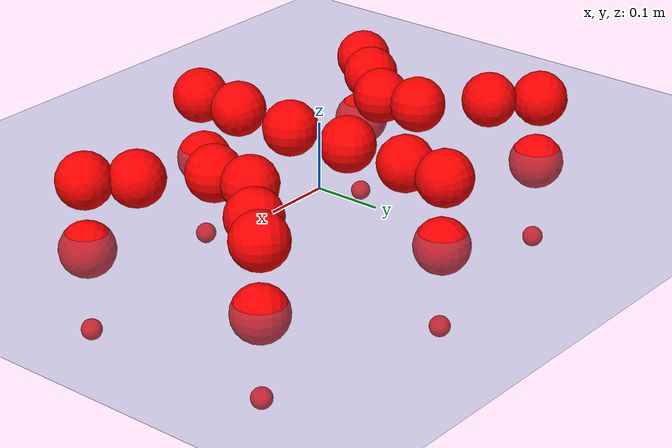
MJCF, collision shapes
<mujoco model="Golem">
  <compiler angle="radian" assetdir="assets" balanceinertia="true" inertiafromgeom="false"/>

  <option timestep="0.005" density="1.2" viscosity="2e-05"/>

  <size nkey="1"/>

  <visual>
    <quality shadowsize="8192"/>
    <map shadowclip="0.5"/>
  </visual>

  <default>
    <default class="/">
      <joint armature="0.01" damping="0.01" frictionloss="0.01"/>
      <geom contype="0" conaffinity="0" group="1" solref="-1000 -80"/>
      <site size="0.01 0.005 0.005" group="5"/>
      <general forcelimited="true" biastype="affine" gainprm="25" biasprm="0 -25 -0.5"/>
      <default class="visual">
        <geom type="mesh" group="2"/>
      </default>
      <default class="collision">
        <geom group="3"/>
      </default>
      <default class="foot">
        <geom size="0.01 0 0" condim="6" group="4" priority="1" solimp="0.015 1 0.01"/>
      </default>
      <default class="reward_collision_sphere">
        <geom group="5" rgba="1 0 0 1"/>
      </default>
    </default>
  </default>

  <asset>
    <texture type="skybox" colorspace="auto" name="//unnamed_texture_0" builtin="gradient" rgb1="0.95 0.95 0.95" rgb2="0.95 0.95 0.95" width="100" height="600"/>
    <texture type="2d" colorspace="auto" name="texplane" builtin="checker" rgb1="0.345 0.575 0.748" rgb2="0.345 0.575 0.748" markrgb="1 1 1" width="512" height="512"/>
    <material name="MatPlane" class="/" texture="texplane" texuniform="true" texrepeat="2 2" specular="0.9"/>
    <mesh name="body" class="/" file="body.stl" scale="0.001 0.001 0.001"/>
    <mesh name="coxa" class="/" file="coxa.stl" scale="0.001 0.001 0.001"/>
    <mesh name="femur" class="/" file="femur.stl" scale="0.001 0.001 0.001"/>
    <mesh name="tibia" class="/" file="tibia.stl" scale="0.001 0.001 0.001"/>
    <mesh name="tarsus" class="/" file="tarsus.stl" scale="0.001 0.001 0.001"/>
  </asset>

  <worldbody>
    <geom name="floor" class="/" size="100 100 0.125" type="plane" group="0" material="MatPlane"/>
    <light name="toplight_shadow" class="/" pos="0 0 5" dir="0.0990148 0.0990148 -0.990148" type="directional" ambient="0.04 0.04 0.04" diffuse="0.55 0.55 0.55" specular="0.12 0.12 0.12"/>
    <light name="toplight_fill" class="/" pos="0 0 5" dir="0.0990148 0.0990148 -0.990148" type="directional" castshadow="false" ambient="0.04 0.04 0.04" diffuse="0.3 0.3 0.3" specular="0.08 0.08 0.08"/>
    <body name="trunk" pos="-0.00263125 -0.00100653 -0.00076953" quat="1 6.30504e-05 3.8262e-05 2.15992e-05">
      <inertial pos="0.00319214 -0.000665511 -0.000417465" quat="0.999914 0.0117812 -0.00392718 0.00421267" mass="3.82315" diaginertia="0.0193843 0.0012485 0.0265609"/>
      <joint name="//unnamed_joint_0" type="free"/>
      <geom name="//unnamed_geom_1" class="/" pos="0 0 0.0775648" quat="1 0 0 0" type="mesh" rgba="0.9 0.9 0.9 1" mesh="body"/>
      <site name="imu" class="/" pos="0.143946 0.00420381 0.127825" size="0.0100463"/>
      <camera name="track" class="/" pos="0 -1.31384 0" quat="0.707107 0.707107 0 0" mode="trackcom"/>
      <camera name="ego_camera" class="/" pos="0.148852 0 0.121195" quat="-0.5 -0.5 0.5 0.5"/>
      <body name="coxa_RR" pos="-0.200265 -0.0543828 0.0767822" quat="0.38271 5.12623e-05 -5.06028e-05 -0.923869">
        <inertial pos="-7.79987e-05 -0.00092066 -0.000364037" quat="0.999997 -0.000748531 -0.00123989 0.00189824" mass="0.204423" diaginertia="0.0190458 0.00125246 0.0267673"/>
        <joint name="coxa_joint_RR" class="/" pos="0 0 0" axis="0.00344009 0.00132775 -0.999993" stiffness="0.00655235" range="-3.13322 3.08415" armature="0.00861357" damping="0.0031015" frictionloss="0.00976529"/>
        <geom name="//unnamed_geom_2" class="/" type="mesh" rgba="0.2 0.2 0.2 1" mesh="coxa"/>
        <geom name="//unnamed_geom_3" class="reward_collision_sphere" size="0.0401851" pos="-0.0343505 0 0"/>
        <body name="femur_RR" pos="0.0654071 0.0030611 -0.00470884" quat="0.499845 -0.49984 0.500234 0.500082">
          <inertial pos="-0.000936478 0.00253927 -0.0028358" quat="0.999999 -0.000789424 0.000284449 0.000918888" mass="0.205937" diaginertia="0.0199657 0.00123619 0.0264683"/>
          <joint name="femur_joint_RR" class="/" pos="0 0 0" axis="-0.000478124 -0.00320798 -0.999995" range="-3.11853 3.11014" armature="0.00871412" damping="0.0136132" frictionloss="0.011385"/>
          <geom name="//unnamed_geom_4" class="/" type="mesh" rgba="0.9 0.9 0.9 1" mesh="femur"/>
          <geom name="//unnamed_geom_5" class="reward_collision_sphere" size="0.0401851"/>
          <body name="tibia_RR" pos="-0.000393378 -0.0684603 0.00296155" quat="-0.00107889 0.999999 0.00061675 0.000159896">
            <inertial pos="-0.00187227 -0.00252151 0.000100258" quat="0.999921 0.000132206 -0.0103896 0.00708196" mass="0.203338" diaginertia="0.0190419 0.00123508 0.0262359"/>
            <joint name="tibia_joint_RR" class="/" pos="0 0 0" axis="0.00801768 0.00994718 0.999918" stiffness="0.0101023" range="-3.16056 3.0914" armature="0.00886941" damping="0" frictionloss="0.00963774"/>
            <geom name="//unnamed_geom_6" class="/" type="mesh" rgba="0.2 0.2 0.2 1" mesh="tibia"/>
            <geom name="//unnamed_geom_7" class="reward_collision_sphere" size="0.0401851"/>
            <body name="tarsus_RR" pos="0.101394 -0.00175419 -0.00286231" quat="1 -0.000146447 -0.000191957 0.000472359">
              <inertial pos="0.0692311 0.00181559 -0.00247818" quat="0.501903 0.494525 0.508017 0.495436" mass="0.202623" diaginertia="0.0198174 0.0012663 0.0262623"/>
              <joint name="tarsus_joint_RR" class="/" pos="0 0 0" axis="-0.000914608 -0.00230882 0.999997" stiffness="0.00367579" range="-3.14855 3.13299" armature="0.0114607" damping="0.00780581" frictionloss="0.0112437"/>
              <geom name="//unnamed_geom_8" class="/" type="mesh" rgba="0.9 0.9 0.9 1" mesh="tarsus"/>
              <geom name="foot_1" class="foot" size="0.00888845" pos="0.128242 0 0" quat="0 -0.707107 0 0.707107"/>
              <geom name="//unnamed_geom_10" class="reward_collision_sphere" size="0.0401851"/>
              <geom name="//unnamed_geom_11" class="reward_collision_sphere" size="0.0150694" pos="0.123089 0 0"/>
              <site name="foot_1" class="foot" pos="0.128242 0 0" quat="0 -0.707107 0 0.707107" size="0.0100463"/>
            </body>
          </body>
        </body>
      </body>
      <body name="coxa_RM" pos="0.000828241 -0.0875991 0.0776625" quat="0.707118 0.000224691 2.29535e-05 -0.707095">
        <inertial pos="-0.00180803 0.000238132 -0.00217303" quat="0.999998 0.000409415 -0.000707845 -0.00167355" mass="0.196422" diaginertia="0.0196223 0.00119109 0.0251916"/>
        <joint name="coxa_joint_RM" class="/" pos="0 0 0" axis="-0.000598455 -0.00131451 -0.999999" range="-3.14635 3.13139" armature="0.00895361" damping="0.0212857" frictionloss="0.00993578"/>
        <geom name="//unnamed_geom_12" class="/" type="mesh" rgba="0.2 0.2 0.2 1" mesh="coxa"/>
        <geom name="//unnamed_geom_13" class="reward_collision_sphere" size="0.0401851" pos="-0.0343505 0 0"/>
        <body name="femur_RM" pos="0.0645304 -0.00194217 0.00235259" quat="0.50069 -0.49999 0.499686 0.499634">
          <inertial pos="0.00236576 -0.00263154 0.00213641" quat="0.999959 0.0084972 -0.00293898 -0.000569981" mass="0.20891" diaginertia="0.0203261 0.00122058 0.0272219"/>
          <joint name="femur_joint_RM" class="/" pos="0 0 0" axis="0.00254594 0.00492486 -0.999985" range="-3.12867 3.13337" armature="0.00988608" damping="0.00601494" frictionloss="0.00887832"/>
          <geom name="//unnamed_geom_14" class="/" type="mesh" rgba="0.9 0.9 0.9 1" mesh="femur"/>
          <geom name="//unnamed_geom_15" class="reward_collision_sphere" size="0.0401851"/>
          <body name="tibia_RM" pos="-0.00200848 -0.0726816 0.000953197" quat="4.85924e-05 1 5.25728e-05 2.54593e-05">
            <inertial pos="-0.00232632 -0.000130267 -0.00100531" quat="0.999994 -2.45211e-05 -0.00355417 0.000572966" mass="0.205574" diaginertia="0.0196961 0.00123713 0.0273685"/>
            <joint name="tibia_joint_RM" class="/" pos="0 0 0" axis="-0.013303 0.00339954 0.999906" range="-3.08612 3.14452" armature="0.0113934" damping="0.00614062" frictionloss="0.00953204"/>
            <geom name="//unnamed_geom_16" class="/" type="mesh" rgba="0.2 0.2 0.2 1" mesh="tibia"/>
            <geom name="//unnamed_geom_17" class="reward_collision_sphere" size="0.0401851"/>
            <body name="tarsus_RM" pos="0.0999559 -0.00123709 0.00349899" quat="0.999999 0.000706196 0.000576933 0.000930569">
              <inertial pos="0.0711529 0.000828067 0.00253596" quat="0.500934 0.499721 0.500794 0.498547" mass="0.195313" diaginertia="0.0189722 0.00119177 0.0244298"/>
              <joint name="tarsus_joint_RM" class="/" pos="0 0 0" axis="-0.0113623 0.00926004 0.999893" range="-3.12907 3.13058" armature="0.0114842" damping="0.0115291" frictionloss="0.00989058"/>
              <geom name="//unnamed_geom_18" class="/" type="mesh" rgba="0.9 0.9 0.9 1" mesh="tarsus"/>
              <geom name="foot_2" class="foot" size="0.0109481" pos="0.128242 0 0" quat="0 -0.707107 0 0.707107"/>
              <geom name="//unnamed_geom_20" class="reward_collision_sphere" size="0.0401851"/>
              <geom name="//unnamed_geom_21" class="reward_collision_sphere" size="0.0150694" pos="0.123089 0 0"/>
              <site name="foot_2" class="foot" pos="0.128242 0 0" quat="0 -0.707107 0 0.707107" size="0.0100463"/>
            </body>
          </body>
        </body>
      </body>
      <body name="coxa_RF" pos="0.206716 -0.0573749 0.078033" quat="0.923382 0.000297647 -3.10987e-05 -0.383882">
        <inertial pos="-0.00165768 0.000916704 0.00223517" quat="0.9999 0.00117392 0.00692265 -0.0122569" mass="0.206556" diaginertia="0.0189401 0.00122452 0.025175"/>
        <joint name="coxa_joint_RF" class="/" pos="0 0 0" axis="0.00878942 -0.00414508 -0.999953" range="-3.19558 3.1365" armature="0.00877149" damping="0.0228752" frictionloss="0.0114595"/>
        <geom name="//unnamed_geom_22" class="/" type="mesh" rgba="0.2 0.2 0.2 1" mesh="coxa"/>
        <geom name="//unnamed_geom_23" class="reward_collision_sphere" size="0.0401851" pos="-0.0343505 0 0"/>
        <body name="femur_RF" pos="0.0686333 0.000399649 -0.00334268" quat="0.500351 -0.499561 0.500554 0.499533">
          <inertial pos="0.000442171 -0.0028503 -0.00046881" quat="0.999997 0.00233951 -0.000636141 -0.000707014" mass="0.197409" diaginertia="0.0199174 0.00119533 0.0251889"/>
          <joint name="femur_joint_RF" class="/" pos="0 0 0" axis="0.00135629 0.00364542 -0.999992" stiffness="0.00244492" range="-3.09261 3.11543" armature="0.0101155" damping="0" frictionloss="0.00987744"/>
          <geom name="//unnamed_geom_24" class="/" type="mesh" rgba="0.9 0.9 0.9 1" mesh="femur"/>
          <geom name="//unnamed_geom_25" class="reward_collision_sphere" size="0.0401851"/>
          <body name="tibia_RF" pos="-0.000469604 -0.0696875 0.000664611" quat="-3.1736e-05 1 1.32275e-05 -0.000105902">
            <inertial pos="-0.00108106 -0.000625821 4.15967e-05" quat="0.999987 0.00247476 -0.00141987 -0.0042556" mass="0.193647" diaginertia="0.0184305 0.00117826 0.0252704"/>
            <joint name="tibia_joint_RF" class="/" pos="0 0 0" axis="0.00765296 0.0123112 0.999895" range="-3.08438 3.12083" armature="0.00974454" damping="0" frictionloss="0.0114678"/>
            <geom name="//unnamed_geom_26" class="/" type="mesh" rgba="0.2 0.2 0.2 1" mesh="tibia"/>
            <geom name="//unnamed_geom_27" class="reward_collision_sphere" size="0.0401851"/>
            <body name="tarsus_RF" pos="0.101206 0.00063318 -0.00152178" quat="0.999999 0.000821738 -0.000158942 0.00101267">
              <inertial pos="0.0672146 -0.00288126 0.00101091" quat="0.499995 0.499637 0.500166 0.500201" mass="0.197401" diaginertia="0.0190647 0.00122101 0.025038"/>
              <joint name="tarsus_joint_RF" class="/" pos="0 0 0" axis="0.00837219 -0.0117193 0.999896" range="-3.16194 3.15048" armature="0.00964954" damping="0" frictionloss="0.00907615"/>
              <geom name="//unnamed_geom_28" class="/" type="mesh" rgba="0.9 0.9 0.9 1" mesh="tarsus"/>
              <geom name="foot_3" class="foot" size="0.0100075" pos="0.128242 0 0" quat="0 -0.707107 0 0.707107"/>
              <geom name="//unnamed_geom_30" class="reward_collision_sphere" size="0.0401851"/>
              <geom name="//unnamed_geom_31" class="reward_collision_sphere" size="0.0150694" pos="0.123089 0 0"/>
              <site name="foot_3" class="foot" pos="0.128242 0 0" quat="0 -0.707107 0 0.707107" size="0.0100463"/>
            </body>
          </body>
        </body>
      </body>
      <body name="coxa_LR" pos="-0.207422 0.0558107 0.0766687" quat="0.383088 0.000378828 0.000165598 0.923712">
        <inertial pos="0.00254474 0.000312341 0.00117843" quat="0.999989 -0.00360002 0.0022721 0.00195011" mass="0.199079" diaginertia="0.0199071 0.00126703 0.0261889"/>
        <joint name="coxa_joint_LR" class="/" pos="0 0 0" axis="-0.0194491 0.0017054 -0.999809" stiffness="0.0177667" range="-3.13068 3.19176" armature="0.0112796" damping="0.00218065" frictionloss="0.0111174"/>
        <geom name="//unnamed_geom_32" class="/" type="mesh" rgba="0.2 0.2 0.2 1" mesh="coxa"/>
        <geom name="//unnamed_geom_33" class="reward_collision_sphere" size="0.0401851" pos="-0.0343505 0 0"/>
        <body name="femur_LR" pos="0.070238 0.00230375 0.00223376" quat="0.500569 -0.499369 0.500655 0.499405">
          <inertial pos="-0.00187285 -0.00109902 0.00109508" quat="1 0.000903129 -0.000152236 -0.000145988" mass="0.213026" diaginertia="0.0210742 0.00129172 0.0264059"/>
          <joint name="femur_joint_LR" class="/" pos="0 0 0" axis="-0.0036501 -0.00221624 0.999991" range="-3.19332 3.0894" armature="0.00987417" damping="0" frictionloss="0.00902909"/>
          <geom name="//unnamed_geom_34" class="/" type="mesh" rgba="0.9 0.9 0.9 1" mesh="femur"/>
          <geom name="//unnamed_geom_35" class="reward_collision_sphere" size="0.0401851"/>
          <body name="tibia_LR" pos="-0.000174147 -0.073878 -0.00265843" quat="-0.000535139 1 -0.000283564 0.000124955">
            <inertial pos="0.000116322 -0.00112603 0.000918768" quat="0.999904 0.0135434 -0.00191182 -0.00230196" mass="0.190108" diaginertia="0.0183611 0.00122471 0.0250473"/>
            <joint name="tibia_joint_LR" class="/" pos="0 0 0" axis="-0.00561277 0.00457841 -0.999974" range="-3.13214 3.10687" armature="0.00996578" damping="0.00950031" frictionloss="0.0113959"/>
            <geom name="//unnamed_geom_36" class="/" type="mesh" rgba="0.2 0.2 0.2 1" mesh="tibia"/>
            <geom name="//unnamed_geom_37" class="reward_collision_sphere" size="0.0401851"/>
            <body name="tarsus_LR" pos="0.100555 -0.000979737 -0.00237523" quat="0.999999 -0.000122162 -0.00129338 0.00046317">
              <inertial pos="0.0653494 0.00315048 -0.00235747" quat="0.499008 0.496294 0.502418 0.502254" mass="0.196742" diaginertia="0.019595 0.00127326 0.0266156"/>
              <joint name="tarsus_joint_LR" class="/" pos="0 0 0" axis="-0.00217796 -0.00455078 -0.999987" range="-3.18989 3.15015" armature="0.00896674" damping="0.0286531" frictionloss="0.010541"/>
              <geom name="//unnamed_geom_38" class="/" type="mesh" rgba="0.9 0.9 0.9 1" mesh="tarsus"/>
              <geom name="foot_4" class="foot" size="0.010352" pos="0.128242 0 0" quat="0.707107 0 -0.707107 0"/>
              <geom name="//unnamed_geom_40" class="reward_collision_sphere" size="0.0401851"/>
              <geom name="//unnamed_geom_41" class="reward_collision_sphere" size="0.0150694" pos="0.123089 0 0"/>
              <site name="foot_4" class="foot" pos="0.128242 0 0" quat="0.707107 0 -0.707107 0" size="0.0100463"/>
            </body>
          </body>
        </body>
      </body>
      <body name="coxa_LM" pos="0.000384856 0.0836563 0.0812589" quat="0.7074 0.000156667 -0.000307565 0.706814">
        <inertial pos="0.00309056 0.00218638 0.00277861" quat="0.999903 -0.00805739 0.00099038 -0.0113432" mass="0.200121" diaginertia="0.0204602 0.00119804 0.0269572"/>
        <joint name="coxa_joint_LM" class="/" pos="0 0 0" axis="0.00616829 -0.00167207 -0.99998" range="-3.08632 3.14665" armature="0.0101271" damping="0.00252647" frictionloss="0.0101263"/>
        <geom name="//unnamed_geom_42" class="/" type="mesh" rgba="0.2 0.2 0.2 1" mesh="coxa"/>
        <geom name="//unnamed_geom_43" class="reward_collision_sphere" size="0.0401851" pos="-0.0343505 0 0"/>
        <body name="femur_LM" pos="0.0658641 -0.000268427 -0.00018947" quat="0.499384 -0.499688 0.500556 0.500371">
          <inertial pos="0.00256034 -6.62382e-05 -0.00270152" quat="0.999996 0.000144765 0.0025733 -0.00122431" mass="0.211419" diaginertia="0.02004 0.0012551 0.0276814"/>
          <joint name="femur_joint_LM" class="/" pos="0 0 0" axis="-0.000468756 -0.0119888 0.999928" range="-3.16532 3.11224" armature="0.0109773" damping="0.0150619" frictionloss="0.0113951"/>
          <geom name="//unnamed_geom_44" class="/" type="mesh" rgba="0.9 0.9 0.9 1" mesh="femur"/>
          <geom name="//unnamed_geom_45" class="reward_collision_sphere" size="0.0401851"/>
          <body name="tibia_LM" pos="0.00102253 -0.0673689 -0.00216583" quat="0.000856408 1 -0.000279006 0.000349692">
            <inertial pos="0.0029153 0.00215318 -0.000916651" quat="0.999937 -0.00798764 0.00146252 0.00780787" mass="0.216461" diaginertia="0.0204595 0.00126007 0.0280277"/>
            <joint name="tibia_joint_LM" class="/" pos="0 0 0" axis="0.00759636 -0.011528 -0.999905" stiffness="0.00345559" range="-3.12283 3.14185" armature="0.00923442" damping="0.00249519" frictionloss="0.0104457"/>
            <geom name="//unnamed_geom_46" class="/" type="mesh" rgba="0.2 0.2 0.2 1" mesh="tibia"/>
            <geom name="//unnamed_geom_47" class="reward_collision_sphere" size="0.0401851"/>
            <body name="tarsus_LM" pos="0.10134 -0.00171789 -2.73961e-05" quat="1 8.40521e-05 -0.000158462 5.11309e-05">
              <inertial pos="0.0688536 0.00090941 0.00221838" quat="0.510776 0.493646 0.501011 0.494377" mass="0.196012" diaginertia="0.0195449 0.00125715 0.0260997"/>
              <joint name="tarsus_joint_LM" class="/" pos="0 0 0" axis="-0.000413353 0.0059442 -0.999982" range="-3.18077 3.11664" armature="0.0102749" damping="0.0197269" frictionloss="0.0101818"/>
              <geom name="//unnamed_geom_48" class="/" type="mesh" rgba="0.9 0.9 0.9 1" mesh="tarsus"/>
              <geom name="foot_5" class="foot" size="0.0100656" pos="0.128242 0 0" quat="0.707107 0 -0.707107 0"/>
              <geom name="//unnamed_geom_50" class="reward_collision_sphere" size="0.0401851"/>
              <geom name="//unnamed_geom_51" class="reward_collision_sphere" size="0.0150694" pos="0.123089 0 0"/>
              <site name="foot_5" class="foot" pos="0.128242 0 0" quat="0.707107 0 -0.707107 0" size="0.0100463"/>
            </body>
          </body>
        </body>
      </body>
      <body name="coxa_LF" pos="0.205066 0.053741 0.0795202" quat="0.923747 -0.000245361 -0.000364574 0.383002">
        <inertial pos="-0.000513267 1.04545e-05 0.00239208" quat="0.999974 -0.00243442 -0.00474981 0.00493636" mass="0.197797" diaginertia="0.0197448 0.0011913 0.0252533"/>
        <joint name="coxa_joint_LF" class="/" pos="0 0 0" axis="-0.0115941 0.000727376 -0.999933" range="-3.13125 3.12768" armature="0.00980267" damping="0.0300394" frictionloss="0.0089723"/>
        <geom name="//unnamed_geom_52" class="/" type="mesh" rgba="0.2 0.2 0.2 1" mesh="coxa"/>
        <geom name="//unnamed_geom_53" class="reward_collision_sphere" size="0.0401851" pos="-0.0343505 0 0"/>
        <body name="femur_LF" pos="0.0696516 -0.00183113 0.00169255" quat="0.500487 -0.499927 0.498971 0.500614">
          <inertial pos="0.000593494 -0.0006365 0.00132058" quat="0.99991 -0.00308799 0.0123425 0.00433826" mass="0.202415" diaginertia="0.0191395 0.0012069 0.026323"/>
          <joint name="femur_joint_LF" class="/" pos="0 0 0" axis="0.0121104 0.00669236 0.999904" range="-3.14948 3.14002" armature="0.0100163" damping="0" frictionloss="0.0109174"/>
          <geom name="//unnamed_geom_54" class="/" type="mesh" rgba="0.9 0.9 0.9 1" mesh="femur"/>
          <geom name="//unnamed_geom_55" class="reward_collision_sphere" size="0.0401851"/>
          <body name="tibia_LF" pos="-0.00203973 -0.0726978 0.00161776" quat="-1.41058e-05 1 -0.000252892 -0.000299681">
            <inertial pos="0.00057774 -0.00184879 -0.00175527" quat="0.999987 0.00342038 0.00372817 0.000912991" mass="0.205922" diaginertia="0.0207165 0.00121743 0.0260859"/>
            <joint name="tibia_joint_LF" class="/" pos="0 0 0" axis="0.000108513 -0.000144471 -1" range="-3.14184 3.1914" armature="0.0102138" damping="0.00882137" frictionloss="0.00997234"/>
            <geom name="//unnamed_geom_56" class="/" type="mesh" rgba="0.2 0.2 0.2 1" mesh="tibia"/>
            <geom name="//unnamed_geom_57" class="reward_collision_sphere" size="0.0401851"/>
            <body name="tarsus_LF" pos="0.100944 0.00268739 0.00069534" quat="0.999999 -0.00054117 0.00092869 -0.000907767">
              <inertial pos="0.0682488 -0.00137841 -0.000582727" quat="0.500696 0.499306 0.500026 0.499971" mass="0.189655" diaginertia="0.0184262 0.00114394 0.0255482"/>
              <joint name="tarsus_joint_LF" class="/" pos="0 0 0" axis="0.00277045 -0.00911869 -0.999955" range="-3.15127 3.09586" armature="0.0109348" damping="0.0291925" frictionloss="0.0101354"/>
              <geom name="//unnamed_geom_58" class="/" type="mesh" rgba="0.9 0.9 0.9 1" mesh="tarsus"/>
              <geom name="foot_6" class="foot" size="0.010712" pos="0.128242 0 0" quat="0.707107 0 -0.707107 0"/>
              <geom name="//unnamed_geom_60" class="reward_collision_sphere" size="0.0401851"/>
              <geom name="//unnamed_geom_61" class="reward_collision_sphere" size="0.0150694" pos="0.123089 0 0"/>
              <site name="foot_6" class="foot" pos="0.128242 0 0" quat="0.707107 0 -0.707107 0" size="0.0100463"/>
            </body>
          </body>
        </body>
      </body>
    </body>
  </worldbody>

  <contact>
    <pair class="/" geom1="floor" geom2="foot_1" name="//unnamed_contact_0"/>
    <pair class="/" geom1="floor" geom2="foot_2" name="//unnamed_contact_1"/>
    <pair class="/" geom1="floor" geom2="foot_3" name="//unnamed_contact_2"/>
    <pair class="/" geom1="floor" geom2="foot_4" name="//unnamed_contact_3"/>
    <pair class="/" geom1="floor" geom2="foot_5" name="//unnamed_contact_4"/>
    <pair class="/" geom1="floor" geom2="foot_6" name="//unnamed_contact_5"/>
  </contact>

  <actuator>
    <general name="coxa_joint_RR" class="/" joint="coxa_joint_RR" forcerange="-8.10695 8.10695" gainprm="23.9768" biasprm="0 -23.9768 -0.52412"/>
    <general name="femur_joint_RR" class="/" joint="femur_joint_RR" forcerange="-8.03382 8.03382" gainprm="23.9768" biasprm="0 -23.9768 -0.52412"/>
    <general name="tibia_joint_RR" class="/" joint="tibia_joint_RR" forcerange="-6.66894 6.66894" gainprm="23.9768" biasprm="0 -23.9768 -0.52412"/>
    <general name="tarsus_joint_RR" class="/" joint="tarsus_joint_RR" forcerange="-6.74547 6.74547" gainprm="23.9768" biasprm="0 -23.9768 -0.52412"/>
    <general name="coxa_joint_RM" class="/" joint="coxa_joint_RM" forcerange="-6.9802 6.9802" gainprm="23.9768" biasprm="0 -23.9768 -0.52412"/>
    <general name="femur_joint_RM" class="/" joint="femur_joint_RM" forcerange="-7.4069 7.4069" gainprm="23.9768" biasprm="0 -23.9768 -0.52412"/>
    <general name="tibia_joint_RM" class="/" joint="tibia_joint_RM" forcerange="-7.38608 7.38608" gainprm="23.9768" biasprm="0 -23.9768 -0.52412"/>
    <general name="tarsus_joint_RM" class="/" joint="tarsus_joint_RM" forcerange="-7.614 7.614" gainprm="23.9768" biasprm="0 -23.9768 -0.52412"/>
    <general name="coxa_joint_RF" class="/" joint="coxa_joint_RF" forcerange="-7.10667 7.10667" gainprm="23.9768" biasprm="0 -23.9768 -0.52412"/>
    <general name="femur_joint_RF" class="/" joint="femur_joint_RF" forcerange="-7.33306 7.33306" gainprm="23.9768" biasprm="0 -23.9768 -0.52412"/>
    <general name="tibia_joint_RF" class="/" joint="tibia_joint_RF" forcerange="-7.63731 7.63731" gainprm="23.9768" biasprm="0 -23.9768 -0.52412"/>
    <general name="tarsus_joint_RF" class="/" joint="tarsus_joint_RF" forcerange="-7.75882 7.75882" gainprm="23.9768" biasprm="0 -23.9768 -0.52412"/>
    <general name="coxa_joint_LR" class="/" joint="coxa_joint_LR" forcerange="-7.39464 7.39464" gainprm="23.9768" biasprm="0 -23.9768 -0.52412"/>
    <general name="femur_joint_LR" class="/" joint="femur_joint_LR" forcerange="-7.24909 7.24909" gainprm="23.9768" biasprm="0 -23.9768 -0.52412"/>
    <general name="tibia_joint_LR" class="/" joint="tibia_joint_LR" forcerange="-7.41018 7.41018" gainprm="23.9768" biasprm="0 -23.9768 -0.52412"/>
    <general name="tarsus_joint_LR" class="/" joint="tarsus_joint_LR" forcerange="-7.63689 7.63689" gainprm="23.9768" biasprm="0 -23.9768 -0.52412"/>
    <general name="coxa_joint_LM" class="/" joint="coxa_joint_LM" forcerange="-7.05075 7.05075" gainprm="23.9768" biasprm="0 -23.9768 -0.52412"/>
    <general name="femur_joint_LM" class="/" joint="femur_joint_LM" forcerange="-7.51499 7.51499" gainprm="23.9768" biasprm="0 -23.9768 -0.52412"/>
    <general name="tibia_joint_LM" class="/" joint="tibia_joint_LM" forcerange="-7.33874 7.33874" gainprm="23.9768" biasprm="0 -23.9768 -0.52412"/>
    <general name="tarsus_joint_LM" class="/" joint="tarsus_joint_LM" forcerange="-6.67652 6.67652" gainprm="23.9768" biasprm="0 -23.9768 -0.52412"/>
    <general name="coxa_joint_LF" class="/" joint="coxa_joint_LF" forcerange="-7.19338 7.19338" gainprm="23.9768" biasprm="0 -23.9768 -0.52412"/>
    <general name="femur_joint_LF" class="/" joint="femur_joint_LF" forcerange="-7.7995 7.7995" gainprm="23.9768" biasprm="0 -23.9768 -0.52412"/>
    <general name="tibia_joint_LF" class="/" joint="tibia_joint_LF" forcerange="-7.89574 7.89574" gainprm="23.9768" biasprm="0 -23.9768 -0.52412"/>
    <general name="tarsus_joint_LF" class="/" joint="tarsus_joint_LF" forcerange="-7.12668 7.12668" gainprm="23.9768" biasprm="0 -23.9768 -0.52412"/>
  </actuator>

  <sensor>
    <gyro site="imu" name="imu_angular_velocity"/>
    <velocimeter site="imu" name="imu_linear_velocity"/>
    <framelinvel objtype="site" objname="foot_1" name="foot_1_global_linear_velocity"/>
    <framelinvel objtype="site" objname="foot_2" name="foot_2_global_linear_velocity"/>
    <framelinvel objtype="site" objname="foot_3" name="foot_3_global_linear_velocity"/>
    <framelinvel objtype="site" objname="foot_4" name="foot_4_global_linear_velocity"/>
    <framelinvel objtype="site" objname="foot_5" name="foot_5_global_linear_velocity"/>
    <framelinvel objtype="site" objname="foot_6" name="foot_6_global_linear_velocity"/>
  </sensor>

  <keyframe>
    <key name="home" qpos="0 0 0.1457 1 0 0 0 0 0 0 0 0 0 0 0 0 0 0 0 0 0 0 0 0 0 0 0 0 0 0 0"/>
  </keyframe>
</mujoco>
